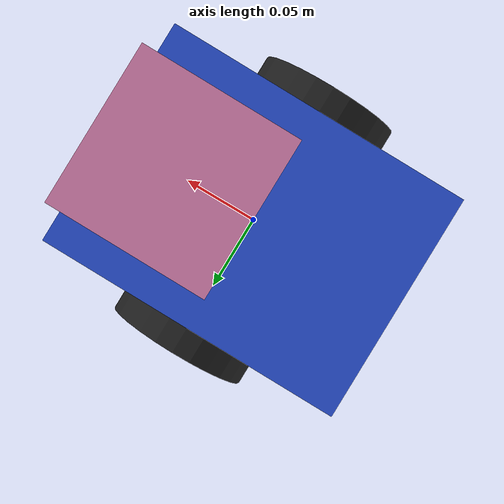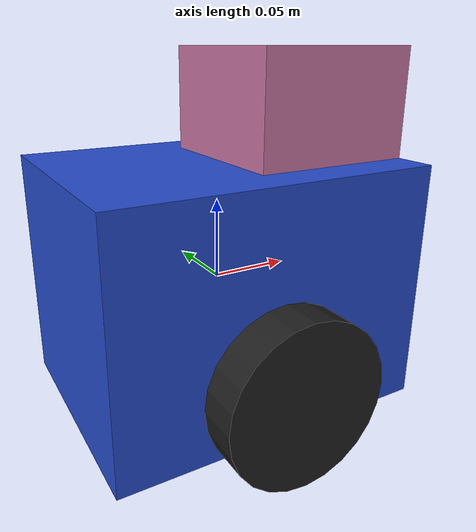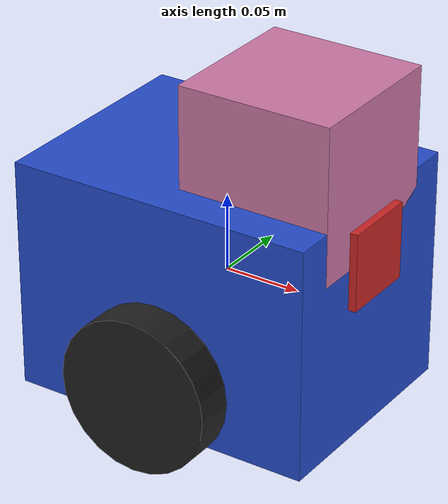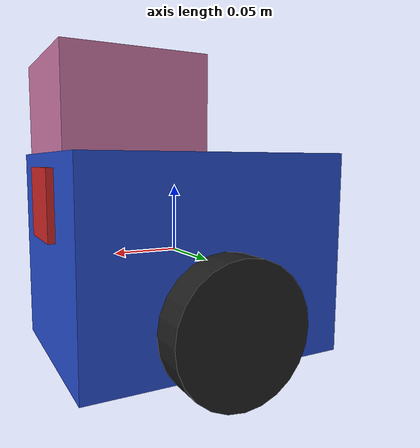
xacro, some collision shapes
<?xml version='1.0'?>
<!-- x-green y-red z-blue - for all values -->
<robot name="my_robot" xmlns:xacro="http://www.ros.org/wiki/xacro">

	<xacro:include filename="$(find my_robot)/urdf/my_robot.gazebo" />

	<link name="robot_footprint"></link>

	<joint name="robot_footprint_joint" type="fixed">
		<origin xyz="0 0 0" rpy="0 0 0" />
    <parent link="robot_footprint" />
    <child link="chassis" />
	</joint>

  <link name="chassis">
		<pose>0 0 0.1 0 0 0</pose>

		<inertial>
			<mass value="15.0" />
			<origin xyz="0.0 0 0" rpy="0 0 0"/>
			<inertia
				ixx="0.1" ixy="0" ixz="0"
				iyy="0.1"	iyz="0"
				izz="0.1"
			/>
		</inertial>

		<collision name="collision">
			<origin xyz="0.0 0 0" rpy="0 0 0"/>
			<geometry>
				<box size=".2 .15 .15"/>
			</geometry>
		</collision>

		<visual name="chassis_visual">
			<origin xyz="0.0 0 0" rpy="0 0 0"/>
			<geometry>
				<box size=".2 .15 .15"/>
			</geometry>
		</visual>

		<collision name="back_caster_collision">
			<origin xyz="-0.06 0 -0.06" rpy="0 0 0"/>
			<geometry>
				<sphere radius="0.0299"/>
			</geometry>
		</collision>

		<visual name="back_caster_visual">
			<origin xyz="-0.06 0 -0.06" rpy="0 0 0"/>
			<geometry>
				<sphere radius="0.03"/>
			</geometry>
		</visual>

		<collision name="front_caster_collision">
			<origin xyz="0.06 0 -0.06" rpy="0 0 0"/>
			<geometry>
				<sphere radius="0.0299"/>
			</geometry>
		</collision>

		<visual name="front_caster_visual">
			<origin xyz="0.06 0 -0.06" rpy="0 0 0"/>
			<geometry>
				<sphere radius="0.03"/>
			</geometry>
		</visual>

	</link>

	<link name="left_wheel">

		<inertial>
			<mass value="5.0" />
			<origin xyz="0 0 0" rpy="0 1.5707 1.5707"/>
			<inertia
				ixx="0.1" ixy="0" ixz="0"
				iyy="0.1" iyz="0"
				izz="0.1"
			/>
		</inertial>

		<collision name="left_wheel_collision">
			<origin xyz="0 0 0" rpy="0 1.5707 1.5707"/>
			<geometry>
				<cylinder radius="0.0499" length="0.02499"/>
			</geometry>
		</collision>

		<visual name="left_wheel_visual">
			<origin xyz="0 0 0" rpy="0 1.5707 1.5707"/>
			<geometry>
				<cylinder radius="0.05" length="0.025"/>
			</geometry>
		</visual>

	</link>

	<link name="right_wheel">

		<inertial>
			<mass value="5.0" />
			<origin xyz="0 0 0" rpy="0 1.5707 1.5707"/>
			<inertia
				ixx="0.1" ixy="0" ixz="0"
				iyy="0.1" iyz="0"
				izz="0.1"
			/>
		</inertial>

		<collision name="right_wheel_collision">
			<origin xyz="0 0 0" rpy="0 1.5707 1.5707"/>
			<geometry>
				<cylinder radius="0.0499" length="0.02499"/>
			</geometry>
		</collision>

		<visual name="right_wheel_visual">
			<origin xyz="0 0 0" rpy="0 1.5707 1.5707"/>
			<geometry>
				<cylinder radius="0.05" length="0.025"/>
			</geometry>
		</visual>

	</link>

	<joint name="left_wheel_hinge" type="continuous">
		<origin xyz="0 0.088 -0.04" rpy="0 0 0"/>
		<child link="left_wheel"/>
		<parent link="chassis"/>
		<axis xyz="0 1 0" rpy="0 0 0"/>
		<limit effort="10000" velocity="1000"/>
		<dynamics damping="1.0" friction="1.0"/>
	</joint>

	<joint name="right_wheel_hinge" type="continuous">
		<origin xyz="0 -0.088 -0.04" rpy="0 0 0"/>
		<child link="right_wheel"/>
		<parent link="chassis"/>
		<axis xyz="0 1 0" rpy="0 0 0"/>
		<limit effort="10000" velocity="1000"/>
		<dynamics damping="1.0" friction="1.0"/>
	</joint>

	<link name="camera">
		<pose>0 0 0 0 0 0</pose>

		<inertial>
			<mass value="0.1"/>
			<origin xyz="0.05 0.05 0.05" rpy="0 0 0"/>
			<inertia
				ixx="1e-6" ixy="0" ixz="0"
				iyy="1e-6" iyz="0"
				izz="1e-6"
			/>
		</inertial>

		<collision name="camera_collision">
			<origin xyz="0 0 0" rpy="0 0 0"/>
			<geometry>
				<box size="0.05 0.05 0.05"/>
			</geometry>
		</collision>

		<visual name="camera_visual">
			<origin xyz="0 0 0" rpy="0 0 0"/>
			<geometry>
				<box size="0.05 0.05 0.05"/>
			</geometry>
		</visual>

	</link>

	<joint name="camera_joint" type="fixed">
		<origin xyz="0.08 0 0.04" rpy="0 0 0"/>
		<axis xyz="0 1 0" rpy="0 0 0"/>
		<child link="camera"/>
		<parent link="chassis"/>
	</joint>

	<joint name="camera_optical_joint" type="fixed">
		<origin xyz="0 0 0" rpy="-1.5707 0 -1.5707"/>
		<parent link="camera"/>
		<child link="camera_link_optical"/>
	</joint>

	<link name="camera_link_optical">
		</link>

	<!-- LIDAR = Hokuyo Sensor -->
	<link name="hokuyo">

		<inertial>
			<mass value="1e-5"/>
			<origin xyz="0 0 0" rpy="0 0 0"/>
			<inertia
				ixx="1e-6" ixy="0" ixz="0"
				iyy="1e-6" iyz="0"
				izz="1e-6"
			/>
		</inertial>

		<collision name="hokuyo_collision">
			<origin xyz="0 0 0" rpy="0 0 0"/>
			<geometry>
				<box size="0.1 0.1 0.1"/>
			</geometry>
		</collision>

		<visual name="hokuyo_visual">
			<origin xyz="0 0 0" rpy="0 0 0"/>
			<geometry>
				<mesh filename="package://my_robot/meshes/hokuyo.dae"/>
			</geometry>
		</visual>

	</link>

		<joint name="hokuyo_joint" type="fixed">
			<origin xyz="0.05 0.0 0.0905" rpy="0 0 0"/>
			<axis xyz="0 1 0" rpy="0 0 0"/>
			<child link="hokuyo"/>
			<parent link="chassis"/>
		</joint>

	<gazebo reference="chassis">
    <material>Gazebo/Blue</material>
  </gazebo>

  <gazebo reference="left_wheel">
    <material>Gazebo/Black</material>
  </gazebo>

  <gazebo reference="right_wheel">
    <material>Gazebo/Black</material>
  </gazebo>

  <gazebo reference="camera">
    <material>Gazebo/Red</material>
  </gazebo>

</robot>
